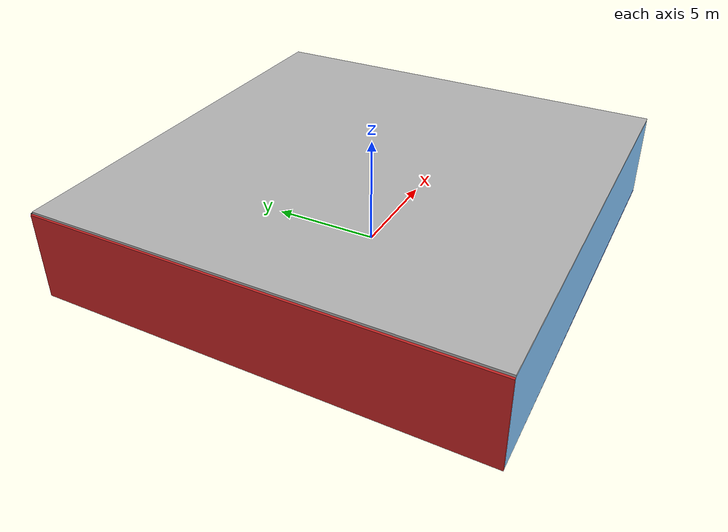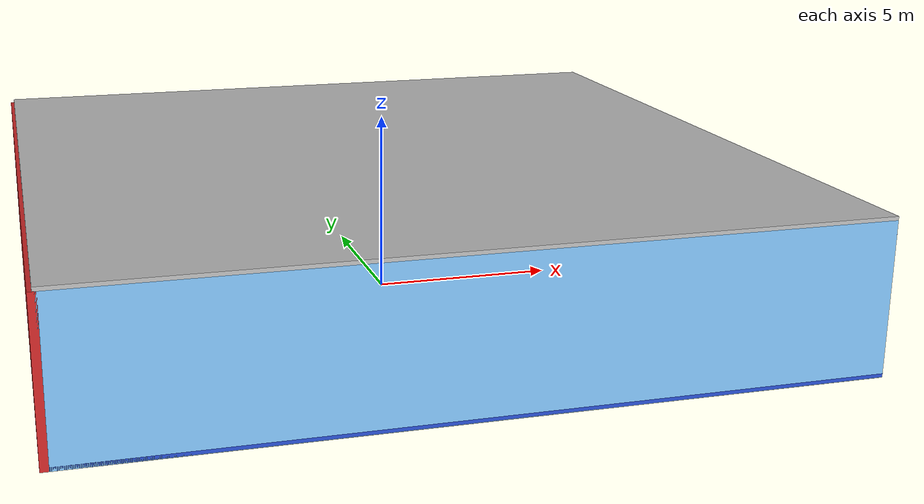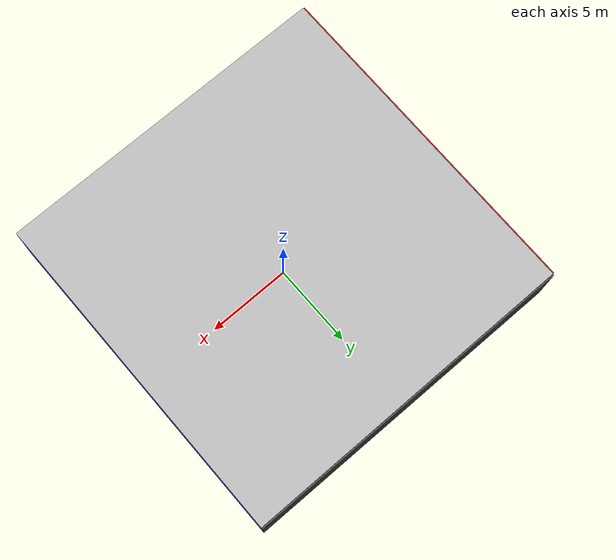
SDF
<sdf version="1.4">
 <world name="default">
  <physics type="ode">
   <max_step_size>0.001</max_step_size>
   <real_time_factor>1</real_time_factor>
   <real_time_update_rate>1000</real_time_update_rate>
   <gravity>0 0 -9.8</gravity>
  </physics>
  <scene><ambient>0.4 0.4 0.4 1</ambient><background>0.7 0.7 0.7 1</background><shadows>1</shadows></scene>
  <model name="Surrounding">
   <static>1</static>
   <link name="Ceiling">
    <collision name="Ceiling_Collision"><geometry><box><size>20 20 0.1</size></box></geometry></collision>
    <visual name="Ceiling_Visual">
     <geometry><box><size>20 20 0.1</size></box></geometry>
     <material>
      <script><uri>file://media/materials/scripts/gazebo.material</uri><name>Gazebo/PioneerBody</name></script>
     </material>
    </visual>
    <pose>0 0 4.05 0 0 0</pose>
   </link>
   <link name="Wall_South">
    <collision name="Wall_South_Collision">
     <geometry><box><size>20 0 4</size></box></geometry>
     <pose>0 0 2 0 -0 0</pose>
    </collision>
    <visual name="Wall_South_Visual">
     <pose>0 0 2 0 -0 0</pose>
     <geometry><box><size>20 0 4</size></box></geometry>
     <material>
      <script><uri>file://media/materials/scripts/gazebo.material</uri><name>Gazebo/SkyBlue</name></script>
     </material>
    </visual>
    <velocity_decay><linear>0</linear><angular>0</angular></velocity_decay>
    <pose>0 -10 0 0 -0 0</pose>
   </link>
   <link name="Wall_East">
    <collision name="Wall_21_Collision">
     <geometry><box><size>20 0 4</size></box></geometry>
     <pose>0 0 2 0 -0 0</pose>
    </collision>
    <visual name="Wall_21_Visual">
     <pose>0 0 2 0 -0 0</pose>
     <geometry><box><size>20 0 4</size></box></geometry>
     <material>
      <script><uri>file://media/materials/scripts/gazebo.material</uri><name>Gazebo/Blue</name></script>
     </material>
    </visual>
    <velocity_decay><linear>0</linear><angular>0</angular></velocity_decay>
    <pose>10 0 0 0 -0 1.5708</pose>
   </link>
   <link name="Wall_North">
    <collision name="Wall_22_Collision">
     <geometry><box><size>20 0.2 4</size></box></geometry>
     <pose>0 0 2 0 -0 0</pose>
    </collision>
    <visual name="Wall_22_Visual">
     <pose>0 0 2 0 -0 0</pose>
     <geometry><box><size>20 0.2 4</size></box></geometry>
     <material>
      <script><uri>file://media/materials/scripts/gazebo.material</uri><name>Gazebo/DarkGrey</name></script>
     </material>
    </visual>
    <velocity_decay><linear>0</linear><angular>0</angular></velocity_decay>
    <pose>0 10 0 0 -0 0</pose>
   </link>
   <link name="Wall_West">
    <collision name="Wall_23_Collision">
     <geometry><box><size>20 0.2 4</size></box></geometry>
     <pose>0 0 2 0 -0 0</pose>
    </collision>
    <visual name="Wall_23_Visual">
     <pose>0 0 2 0 -0 0</pose>
     <geometry><box><size>20 0.2 4</size></box></geometry>
     <material>
      <script><uri>file://media/materials/scripts/gazebo.material</uri><name>Gazebo/RedBright</name></script>
     </material>
    </visual>
    <velocity_decay><linear>0</linear><angular>0</angular></velocity_decay>
    <pose>-10 0 0 0 0 -1.5708</pose>
   </link>
   <link name="Ground_link">
    <collision name="collision">
     <pose>0 0 .05 0 -0 0</pose>
     <geometry><box><size>20 20 0.1</size></box></geometry>
    </collision>
    <visual name="visual">
     <pose>0 0 .05 0 -0 0</pose>
     <geometry><box><size>20 20 0.1</size></box></geometry>
     <material>
      <script><uri>file://media/materials/scripts/gazebo.material</uri><name>Gazebo/BlueLaser</name></script>
     </material>
    </visual>
   </link>
   <static>1</static>
  </model>
  <spherical_coordinates>
   <surface_model>EARTH_WGS84</surface_model>
   <latitude_deg>0</latitude_deg>
   <longitude_deg>0</longitude_deg>
   <elevation>0</elevation>
   <heading_deg>0</heading_deg>
  </spherical_coordinates>
  <light name="lightball_0" type="diffuse">
   <diffuse>0.8 0.8 0.8 1</diffuse>
   <specular>0.2 0.2 0.2 1</specular>
   <attenuation>
    <range>100</range>
    <constant>0.7</constant>
    <linear>0.01</linear>
    <quadratic>0.001</quadratic>
   </attenuation>
   <direction>-0.5 0.1 -0.9</direction>
   <pose>-4.35518379921 8.31779058157 2.5358173249 0 0 0</pose>
  </light>
  <light name="lightball_1" type="diffuse">
   <diffuse>0.8 0.8 0.8 1</diffuse>
   <specular>0.2 0.2 0.2 1</specular>
   <attenuation>
    <range>100</range>
    <constant>0.7</constant>
    <linear>0.01</linear>
    <quadratic>0.001</quadratic>
   </attenuation>
   <direction>-0.5 0.1 -0.9</direction>
   <pose>-7.65201886588 1.70774700744 1.35659860038 0 0 0</pose>
  </light>
  <light name="lightball_2" type="diffuse">
   <diffuse>0.8 0.8 0.8 1</diffuse>
   <specular>0.2 0.2 0.2 1</specular>
   <attenuation>
    <range>100</range>
    <constant>0.7</constant>
    <linear>0.01</linear>
    <quadratic>0.001</quadratic>
   </attenuation>
   <direction>-0.5 0.1 -0.9</direction>
   <pose>2.30343066193 -3.01403857441 3.43114110911 0 0 0</pose>
  </light>
  <light name="lightball_3" type="diffuse">
   <diffuse>0.8 0.8 0.8 1</diffuse>
   <specular>0.2 0.2 0.2 1</specular>
   <attenuation>
    <range>100</range>
    <constant>0.7</constant>
    <linear>0.01</linear>
    <quadratic>0.001</quadratic>
   </attenuation>
   <direction>-0.5 0.1 -0.9</direction>
   <pose>-0.739392481153 -7.54339644613 3.77915095761 0 0 0</pose>
  </light>
  <light name="lightball_4" type="diffuse">
   <diffuse>0.8 0.8 0.8 1</diffuse>
   <specular>0.2 0.2 0.2 1</specular>
   <attenuation>
    <range>100</range>
    <constant>0.7</constant>
    <linear>0.01</linear>
    <quadratic>0.001</quadratic>
   </attenuation>
   <direction>-0.5 0.1 -0.9</direction>
   <pose>-7.35592802999 6.52715773398 1.07290588632 0 0 0</pose>
  </light>
  <light name="lightball_5" type="diffuse">
   <diffuse>0.8 0.8 0.8 1</diffuse>
   <specular>0.2 0.2 0.2 1</specular>
   <attenuation>
    <range>100</range>
    <constant>0.7</constant>
    <linear>0.01</linear>
    <quadratic>0.001</quadratic>
   </attenuation>
   <direction>-0.5 0.1 -0.9</direction>
   <pose>8.13437561586 -2.469744068 3.65079838194 0 0 0</pose>
  </light>
  <light name="lightball_6" type="diffuse">
   <diffuse>0.8 0.8 0.8 1</diffuse>
   <specular>0.2 0.2 0.2 1</specular>
   <attenuation>
    <range>100</range>
    <constant>0.7</constant>
    <linear>0.01</linear>
    <quadratic>0.001</quadratic>
   </attenuation>
   <direction>-0.5 0.1 -0.9</direction>
   <pose>8.73345972335 -8.85024143747 2.60498749819 0 0 0</pose>
  </light>
  <light name="lightball_7" type="diffuse">
   <diffuse>0.8 0.8 0.8 1</diffuse>
   <specular>0.2 0.2 0.2 1</specular>
   <attenuation>
    <range>100</range>
    <constant>0.7</constant>
    <linear>0.01</linear>
    <quadratic>0.001</quadratic>
   </attenuation>
   <direction>-0.5 0.1 -0.9</direction>
   <pose>4.27162313651 0.111419892774 2.84659524307 0 0 0</pose>
  </light>
  <light name="lightball_8" type="diffuse">
   <diffuse>0.8 0.8 0.8 1</diffuse>
   <specular>0.2 0.2 0.2 1</specular>
   <attenuation>
    <range>100</range>
    <constant>0.7</constant>
    <linear>0.01</linear>
    <quadratic>0.001</quadratic>
   </attenuation>
   <direction>-0.5 0.1 -0.9</direction>
   <pose>-3.03369745126 1.09559624998 1.14619218206 0 0 0</pose>
  </light>
  <light name="lightball_9" type="diffuse">
   <diffuse>0.8 0.8 0.8 1</diffuse>
   <specular>0.2 0.2 0.2 1</specular>
   <attenuation>
    <range>100</range>
    <constant>0.7</constant>
    <linear>0.01</linear>
    <quadratic>0.001</quadratic>
   </attenuation>
   <direction>-0.5 0.1 -0.9</direction>
   <pose>4.66486011319 -5.14901659634 2.9255686167 0 0 0</pose>
  </light>
  <include><uri>model://table</uri><pose>-4.5283301309 -7.92169657947 0 0 0 0.112982016561</pose></include>
  <include>
   <uri>model://textured_shapes</uri>
   <pose>-4.30529801978 -1.63722932157 0 0 0 0.610636885244</pose>
  </include>
  <include><uri>model://table</uri><pose>-4.92203225729 3.71894111956 0 0 0 3.08576620324</pose></include>
  <include><uri>model://cabinet</uri><pose>7.43618091358 5.10411144451 0 0 0 3.07014850171</pose></include>
  <include>
   <uri>model://robocup_3Dsim_goal</uri>
   <pose>6.89461658496 7.77501390769 0 0 0 2.64398173066</pose>
  </include>
 </world>
</sdf>

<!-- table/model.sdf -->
<sdf version="1.5">
  <model name="table">
    <static>true</static>
    <link name="link">
      <collision name="surface">
        <pose>0 0 1.0 0 0 0</pose>
        <geometry>
          <box>
            <size>1.5 0.8 0.03</size>
          </box>
        </geometry>
        <surface>
          <friction>
            <ode>
              <mu>0.6</mu>
              <mu2>0.6</mu2>
            </ode>
          </friction>
        </surface>
      </collision>
      <visual name="visual1">
        <pose>0 0 1.0 0 0 0</pose>
        <geometry>
          <box>
            <size>1.5 0.8 0.03</size>
          </box>
        </geometry>
        <material>
          <script>
            <uri>model://media/materials/scripts/gazebo.material</uri>
            <name>Gazebo/Wood</name>
          </script>
        </material>
      </visual>
      <collision name="front_left_leg">
        <pose>0.68 0.38 0.5 0 0 0</pose>
        <geometry>
          <cylinder>
            <radius>0.02</radius>
            <length>1.0</length>
          </cylinder>
        </geometry>
      </collision>
      <visual name="front_left_leg">
        <pose>0.68 0.38 0.5 0 0 0</pose>
        <geometry>
          <cylinder>
            <radius>0.02</radius>
            <length>1.0</length>
          </cylinder>
        </geometry>
        <material>
          <script>
            <uri>model://media/materials/scripts/gazebo.material</uri>
            <name>Gazebo/Grey</name>
          </script>
        </material>
      </visual>
      <collision name="front_right_leg">
        <pose>0.68 -0.38 0.5 0 0 0</pose>
        <geometry>
          <cylinder>
            <radius>0.02</radius>
            <length>1.0</length>
          </cylinder>
        </geometry>
      </collision>
      <visual name="front_right_leg">
        <pose>0.68 -0.38 0.5 0 0 0</pose>
        <geometry>
          <cylinder>
            <radius>0.02</radius>
            <length>1.0</length>
          </cylinder>
        </geometry>
        <material>
          <script>
            <uri>model://media/materials/scripts/gazebo.material</uri>
            <name>Gazebo/Grey</name>
          </script>
        </material>
      </visual>
      <collision name="back_right_leg">
        <pose>-0.68 -0.38 0.5 0 0 0</pose>
        <geometry>
          <cylinder>
            <radius>0.02</radius>
            <length>1.0</length>
          </cylinder>
        </geometry>
      </collision>
      <visual name="back_right_leg">
        <pose>-0.68 -0.38 0.5 0 0 0</pose>
        <geometry>
          <cylinder>
            <radius>0.02</radius>
            <length>1.0</length>
          </cylinder>
        </geometry>
        <material>
          <script>
            <uri>model://media/materials/scripts/gazebo.material</uri>
            <name>Gazebo/Grey</name>
          </script>
        </material>
      </visual>
      <collision name="back_left_leg">
        <pose>-0.68 0.38 0.5 0 0 0</pose>
        <geometry>
          <cylinder>
            <radius>0.02</radius>
            <length>1.0</length>
          </cylinder>
        </geometry>
      </collision>
      <visual name="back_left_leg">
        <pose>-0.68 0.38 0.5 0 0 0</pose>
        <geometry>
          <cylinder>
            <radius>0.02</radius>
            <length>1.0</length>
          </cylinder>
        </geometry>
        <material>
          <script>
            <uri>model://media/materials/scripts/gazebo.material</uri>
            <name>Gazebo/Grey</name>
          </script>
        </material>
      </visual>
    </link>
  </model>
</sdf>

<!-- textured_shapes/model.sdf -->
<sdf version="1.6">
  <model name="textured_shapes">
    <pose>0 0 0.5 0 0 0</pose>
    <link name="box">
      <pose>0 -1.5 0 0 0 0</pose>
      <collision name="collision">
        <geometry>
          <box>
            <size>1 1 1</size>
          </box>
        </geometry>
      </collision>
      <visual name="visual">
        <geometry>
          <box>
            <size>1 1 1</size>
          </box>
        </geometry>
        <material>
          <script>
            <uri>model://../model_source/models/textured_shapes/materials/scripts</uri>
            <uri>model://../model_source/models/textured_shapes/materials/textures</uri>
            <name>TexturedShape/Squares</name>
          </script>
        </material>
      </visual>
    </link>
    <link name="sphere">
      <collision name="collision">
        <geometry>
          <sphere>
            <radius>0.5</radius>
          </sphere>
        </geometry>
      </collision>
      <visual name="visual">
        <geometry>
          <sphere>
            <radius>0.5</radius>
          </sphere>
        </geometry>
        <material>
          <script>
            <uri>model://../model_source/models/textured_shapes/materials/scripts</uri>
            <uri>model://../model_source/models/textured_shapes/materials/textures</uri>
            <name>TexturedShape/Squares</name>
          </script>
        </material>
      </visual>
    </link>
    <link name="cylinder">
      <pose>0 1.5 0 0 0 0</pose>
      <collision name="collision">
        <geometry>
          <cylinder>
            <radius>0.5</radius>
            <length>1</length>
          </cylinder>
        </geometry>
      </collision>
      <visual name="visual">
        <geometry>
          <cylinder>
            <radius>0.5</radius>
            <length>1</length>
          </cylinder>
        </geometry>
        <material>
          <script>
            <uri>model://../model_source/models/textured_shapes/materials/scripts</uri>
            <uri>model://../model_source/models/textured_shapes/materials/textures</uri>
            <name>TexturedShape/Squares</name>
          </script>
        </material>
      </visual>
    </link>
  </model>
</sdf>

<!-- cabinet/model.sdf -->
<sdf version="1.5">
  <model name="cabinet">
    <static>true</static>
    <link name="cabinet_bottom_plate">
      <inertial>
        <pose>0 0 -1 0 0 0</pose>
        <inertia>
          <ixx>2.050000</ixx>
          <ixy>0</ixy>
          <ixz>0</ixz>
          <iyy>2.050000</iyy>
          <iyz>0</iyz>
          <izz>2.050000</izz>
        </inertia>
        <mass>25.000000</mass>
      </inertial>
      <collision name="cabinet_bottom_plate_geom">
        <pose>0 0 0.010000 0 0 0</pose>
        <geometry>
          <box>
            <size>0.450000 0.450000 0.020000</size>
          </box>
        </geometry>
      </collision>
      <visual name="cabinet_bottom_plate_geom_visual">
        <pose>0 0 0.010000 0 0 0</pose>
        <geometry>
          <box>
            <size>0.450000 0.450000 0.020000</size>
          </box>
        </geometry>
        <material>
          <script>
            <uri>model://media/materials/scripts/gazebo.material</uri>
            <name>Gazebo/Wood</name>
          </script>
        </material>
      </visual>
      <collision name="cabinet_bottom_plate_geom_cabinet_back_plate">
        <pose>0.235000 0 0.510000 0 0 0</pose>
        <geometry>
          <box>
            <size>0.020000 0.450000 1.020000</size>
          </box>
        </geometry>
      </collision>
      <visual name="cabinet_bottom_plate_geom_cabinet_back_plate_visual">
        <pose>0.235000 0 0.510000 0 0 0</pose>
        <geometry>
          <box>
            <size>0.020000 0.450000 1.020000</size>
          </box>
        </geometry>
        <material>
          <script>
            <uri>model://media/materials/scripts/gazebo.material</uri>
            <name>Gazebo/Wood</name>
          </script>
        </material>
      </visual>
      <collision name="cabinet_bottom_plate_geom_cabinet_left_plate">
        <pose>0 0.235000 0.510000 0 0 0</pose>
        <geometry>
          <box>
            <size>0.450000 0.020000 1.020000</size>
          </box>
        </geometry>
      </collision>
      <visual name="cabinet_bottom_plate_geom_cabinet_left_plate_visual">
        <pose>0 0.235000 0.510000 0 0 0</pose>
        <geometry>
          <box>
            <size>0.450000 0.020000 1.020000</size>
          </box>
        </geometry>
        <material>
          <script>
            <uri>model://media/materials/scripts/gazebo.material</uri>
            <name>Gazebo/Wood</name>
          </script>
        </material>
      </visual>
      <collision name="cabinet_bottom_plate_geom_cabinet_middle_plate">
        <pose>0 0 0.510000 0 0 0</pose>
        <geometry>
          <box>
            <size>0.450000 0.450000 0.020000</size>
          </box>
        </geometry>
      </collision>
      <visual name="cabinet_bottom_plate_geom_cabinet_middle_plate_visual">
        <pose>0 0 0.510000 0 0 0</pose>
        <geometry>
          <box>
            <size>0.450000 0.450000 0.020000</size>
          </box>
        </geometry>
        <material>
          <script>
            <uri>model://media/materials/scripts/gazebo.material</uri>
            <name>Gazebo/Wood</name>
          </script>
        </material>
      </visual>
      <collision name="cabinet_bottom_plate_geom_cabinet_right_plate">
        <pose>0 -0.235000 0.510000 0 0 0</pose>
        <geometry>
          <box>
            <size>0.450000 0.020000 1.020000</size>
          </box>
        </geometry>
      </collision>
      <visual name="cabinet_bottom_plate_geom_cabinet_right_plate_visual">
        <pose>0 -0.235000 0.510000 0 0 0</pose>
        <geometry>
          <box>
            <size>0.450000 0.020000 1.020000</size>
          </box>
        </geometry>
        <material>
          <script>
            <uri>model://media/materials/scripts/gazebo.material</uri>
            <name>Gazebo/Wood</name>
          </script>
        </material>
      </visual>
      <collision name="cabinet_bottom_plate_geom_cabinet_top_plate">
        <pose>0 0 1.010000 0 0 0</pose>
        <geometry>
          <box>
            <size>0.450000 0.450000 0.020000</size>
          </box>
        </geometry>
      </collision>
      <visual name="cabinet_bottom_plate_geom_cabinet_top_plate_visual">
        <pose>0 0 1.010000 0 0 0</pose>
        <geometry>
          <box>
            <size>0.450000 0.450000 0.020000</size>
          </box>
        </geometry>
        <material>
          <script>
            <uri>model://media/materials/scripts/gazebo.material</uri>
            <name>Gazebo/Wood</name>
          </script>
        </material>
      </visual>
    </link>
  </model>
</sdf>

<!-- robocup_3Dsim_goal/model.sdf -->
<sdf version="1.5">
  <model name="robocup_3d_goal">
    <static>true</static>
    <link name="left_post">
      <pose>0 1.05 0.45 0 0 0</pose>
      <collision name="collision">
        <geometry>
          <cylinder>
            <radius>0.05</radius>
            <length>0.9</length>
          </cylinder>
        </geometry>
      </collision>
      <visual name="visual">
        <geometry>
          <cylinder>
            <radius>0.05</radius>
            <length>0.9</length>
          </cylinder>
        </geometry>
        <material>
          <script>
            <uri>file://media/materials/scripts/gazebo.material</uri>
            <name>Gazebo/ZincYellow</name>
          </script>
        </material>
      </visual>
    </link>
    <link name="left_support_horiz_lower">
      <pose>0.30 1.05 0.01 0 0 0</pose>
      <collision name="collision">
        <geometry>
          <box>
            <size>0.50 0.02 0.02</size>
          </box>
        </geometry>
      </collision>
      <visual name="visual">
        <geometry>
          <box>
            <size>0.50 0.02 0.02</size>
          </box>
        </geometry>
        <material>
          <script>
            <uri>file://media/materials/scripts/gazebo.material</uri>
            <name>Gazebo/White</name>
          </script>
        </material>
      </visual>
    </link>
    <link name="left_support_horiz_upper">
      <pose>0.30 1.05 0.79 0 0 0</pose>
      <collision name="collision">
        <geometry>
          <box>
            <size>0.50 0.02 0.02</size>
          </box>
        </geometry>
      </collision>
      <visual name="visual">
        <geometry>
          <box>
            <size>0.50 0.02 0.02</size>
          </box>
        </geometry>
        <material>
          <script>
            <uri>file://media/materials/scripts/gazebo.material</uri>
            <name>Gazebo/White</name>
          </script>
        </material>
      </visual>
    </link>
    <link name="left_support_vertical">
      <pose>0.56 1.05 0.4 0 1.5708 0</pose>
      <collision name="collision">
        <geometry>
          <box>
            <size>0.80 0.02 0.02</size>
          </box>
        </geometry>
      </collision>
      <visual name="visual">
        <geometry>
          <box>
            <size>0.80 0.02 0.02</size>
          </box>
        </geometry>
        <material>
          <script>
            <uri>file://media/materials/scripts/gazebo.material</uri>
            <name>Gazebo/White</name>
          </script>
        </material>
      </visual>
    </link>
    <link name="right_support_horiz_lower">
      <pose>0.30 -1.05 0.01 0 0 0</pose>
      <collision name="collision">
        <geometry>
          <box>
            <size>0.50 0.02 0.02</size>
          </box>
        </geometry>
      </collision>
      <visual name="visual">
        <geometry>
          <box>
            <size>0.50 0.02 0.02</size>
          </box>
        </geometry>
        <material>
          <script>
            <uri>file://media/materials/scripts/gazebo.material</uri>
            <name>Gazebo/White</name>
          </script>
        </material>
      </visual>
    </link>
    <link name="right_support_horiz_upper">
      <pose>0.30 -1.05 0.79 0 0 0</pose>
      <collision name="collision">
        <geometry>
          <box>
            <size>0.50 0.02 0.02</size>
          </box>
        </geometry>
      </collision>
      <visual name="visual">
        <geometry>
          <box>
            <size>0.50 0.02 0.02</size>
          </box>
        </geometry>
        <material>
          <script>
            <uri>file://media/materials/scripts/gazebo.material</uri>
            <name>Gazebo/White</name>
          </script>
        </material>
      </visual>
    </link>
    <link name="right_support_vertical">
      <pose>0.56 -1.05 0.4 0 1.5708 0</pose>
      <collision name="collision">
        <geometry>
          <box>
            <size>0.80 0.02 0.02</size>
          </box>
        </geometry>
      </collision>
      <visual name="visual">
        <geometry>
          <box>
            <size>0.80 0.02 0.02</size>
          </box>
        </geometry>
        <material>
          <script>
            <uri>file://media/materials/scripts/gazebo.material</uri>
            <name>Gazebo/White</name>
          </script>
        </material>
      </visual>
    </link>
    <link name="center_support_horiz_lower">
      <pose>0.56 0 0.01 0 1.5708 0</pose>
      <collision name="collision">
        <geometry>
          <box>
            <size>0.02 2.08 0.02</size>
          </box>
        </geometry>
      </collision>
      <visual name="visual">
        <geometry>
          <box>
            <size>0.02 2.08 0.02</size>
          </box>
        </geometry>
        <material>
          <script>
            <uri>file://media/materials/scripts/gazebo.material</uri>
            <name>Gazebo/White</name>
          </script>
        </material>
      </visual>
    </link>
    <link name="center_support_horiz_upper">
      <pose>0.56 0 0.79 0 1.5708 0</pose>
      <collision name="collision">
        <geometry>
          <box>
            <size>0.02 2.08 0.02</size>
          </box>
        </geometry>
      </collision>
      <visual name="visual">
        <geometry>
          <box>
            <size>0.02 2.08 0.02</size>
          </box>
        </geometry>
        <material>
          <script>
            <uri>file://media/materials/scripts/gazebo.material</uri>
            <name>Gazebo/White</name>
          </script>
        </material>
      </visual>
    </link>
    <link name="right_post">
      <pose>0 -1.05 0.45 0 0 0</pose>
      <collision name="collision">
        <geometry>
          <cylinder>
            <radius>0.05</radius>
            <length>0.9</length>
          </cylinder>
        </geometry>
      </collision>
      <visual name="visual">
        <geometry>
          <cylinder>
            <radius>0.05</radius>
            <length>0.9</length>
          </cylinder>
        </geometry>
        <material>
          <script>
            <uri>file://media/materials/scripts/gazebo.material</uri>
            <name>Gazebo/ZincYellow</name>
          </script>
        </material>
      </visual>
    </link>
    <link name="crossbar">
      <pose>0 0 0.85 1.57 1.57 0</pose>
      <collision name="collision">
        <geometry>
          <cylinder>
            <radius>0.05</radius>
            <length>2.0</length>
          </cylinder>
        </geometry>
      </collision>
      <visual name="visual">
        <geometry>
          <cylinder>
            <radius>0.05</radius>
            <length>2.0</length>
          </cylinder>
        </geometry>
        <material>
          <script>
            <uri>file://media/materials/scripts/gazebo.material</uri>
            <name>Gazebo/ZincYellow</name>
          </script>
        </material>
      </visual>
    </link>
    <link name="center_net">
      <pose>0.56 0 0.40 0 0 0</pose>
      <collision name="collision">
        <geometry>
          <box>
            <size>0.01 2.1 0.80</size>
          </box>
        </geometry>
      </collision>
      <visual name="visual">
        <geometry>
          <box>
            <size>0.01 2.1 0.80</size>
          </box>
        </geometry>
        <material>
          <script>
            <uri>model://../model_source/models/robocup09_spl_field/materials/scripts/</uri>
            <uri>model://../model_source/models/robocup09_spl_field/materials/textures/</uri>
            <name>RoboCup/Net</name>
          </script>
        </material>
      </visual>
    </link>
    <link name="left_net">
      <pose>0.30 1.05 0.40 0 0 0</pose>
      <collision name="collision">
        <geometry>
          <box>
            <size>0.50 0.01 0.76</size>
          </box>
        </geometry>
      </collision>
      <visual name="visual">
        <geometry>
          <box>
            <size>0.50 0.01 0.76</size>
          </box>
        </geometry>
        <material>
          <script>
            <uri>model://../model_source/models/robocup09_spl_field/materials/scripts/</uri>
            <uri>model://../model_source/models/robocup09_spl_field/materials/textures/</uri>
            <name>RoboCup/Net</name>
          </script>
        </material>
      </visual>
    </link>
    <link name="right_net">
      <pose>0.30 -1.05 0.40 0 0 0</pose>
      <collision name="collision">
        <geometry>
          <box>
            <size>0.50 0.01 0.76</size>
          </box>
        </geometry>
      </collision>
      <visual name="visual">
        <geometry>
          <box>
            <size>0.50 0.01 0.76</size>
          </box>
        </geometry>
        <material>
          <script>
            <uri>model://../model_source/models/robocup09_spl_field/materials/scripts/</uri>
            <uri>model://../model_source/models/robocup09_spl_field/materials/textures/</uri>
            <name>RoboCup/Net</name>
          </script>
        </material>
      </visual>
    </link>
  </model>
</sdf>
